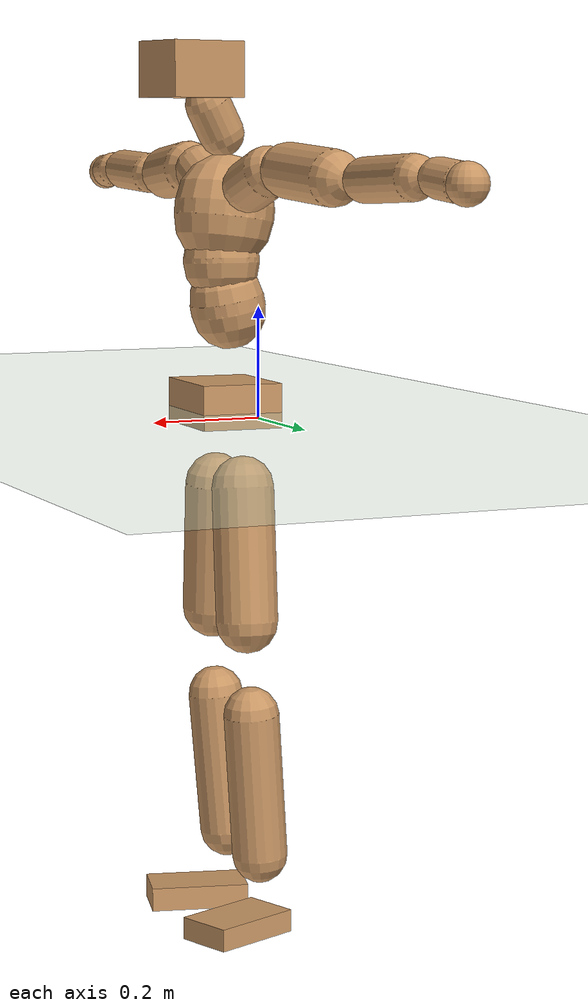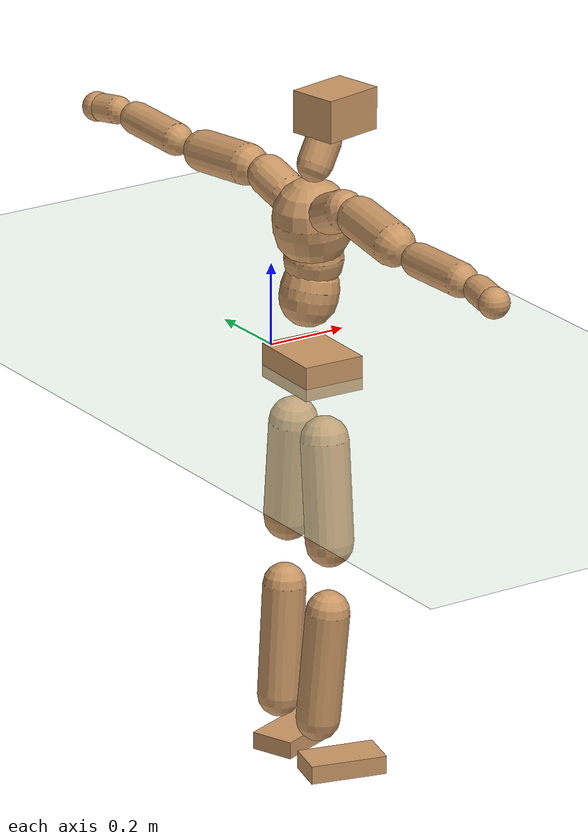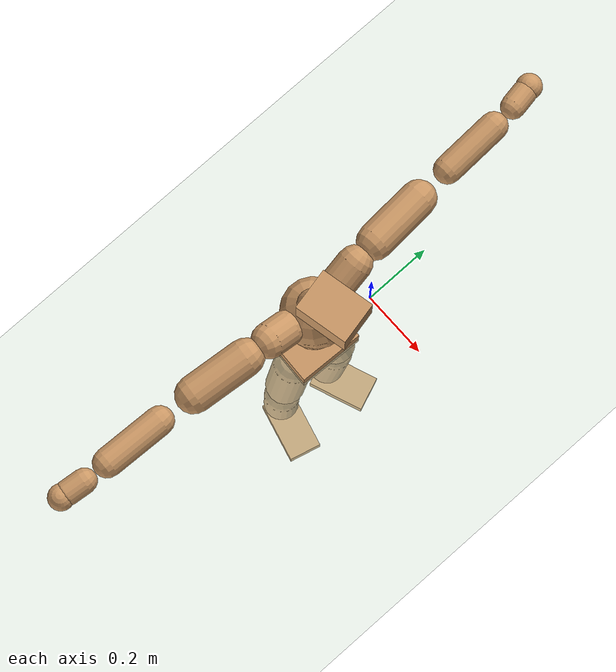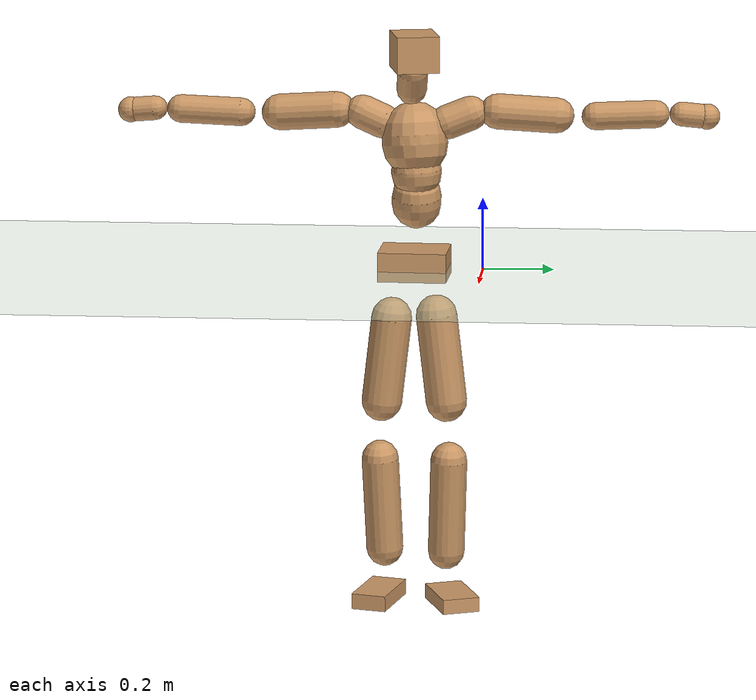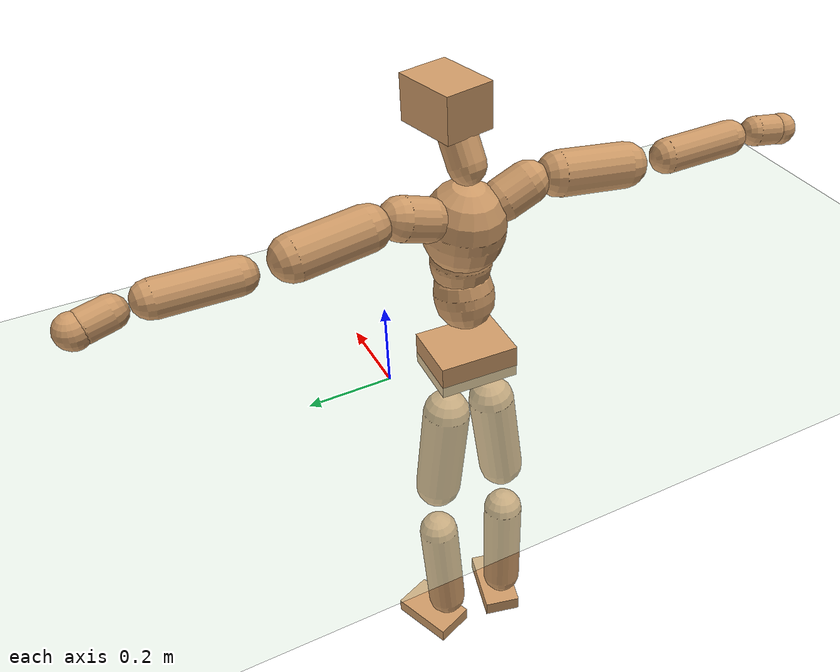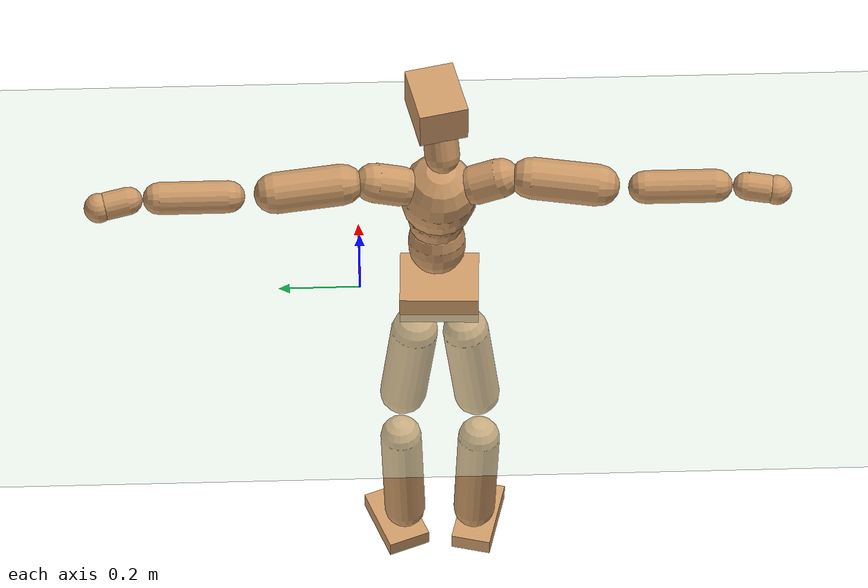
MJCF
<mujoco model="humanoid">
  <compiler coordinate="local" angle="radian"/>
  <default>
    <joint damping="0.0" armature="0.01" stiffness="0.0" limited="true"/>
    <geom conaffinity="1" condim="3" contype="7" margin="0.001" rgba="0.8 0.6 .4 1"/>
  </default>
  <asset>
    <texture type="skybox" builtin="gradient" rgb1=".4 .5 .6" rgb2="0 0 0" width="100" height="100"/>
    <texture builtin="flat" height="1278" mark="cross" markrgb="1 1 1" name="texgeom" random="0.01" rgb1="0.8 0.6 0.4" rgb2="0.8 0.6 0.4" type="cube" width="127"/>
    <texture builtin="checker" height="100" name="texplane" rgb1="0 0 0" rgb2="0.8 0.8 0.8" type="2d" width="100"/>
    <material name="MatPlane" reflectance="0.5" shininess="1" specular="1" texrepeat="60 60" texture="texplane"/>
    <material name="geom" texture="texgeom" texuniform="true"/>
  </asset>
  <worldbody>
    <light cutoff="100" diffuse="1 1 1" dir="-0 0 -1.3" directional="true" exponent="1" pos="0 0 1.3" specular=".1 .1 .1"/>
    <geom conaffinity="1" condim="3" name="floor" pos="0 0 0" rgba="0.8 0.9 0.8 1" size="100 100 .2" type="plane" material="MatPlane"/>
    <body name="Pelvis" pos="-0.0031 -0.1941 0.0185">
      <freejoint name="Pelvis"/>
      <geom type="box" contype="1" conaffinity="1" density="500" pos="-0.0115 0.0004 -0.0085" size="0.076 0.0966 0.0412" quat="0.9998 0.0000 0.0000 -0.0185" name="Pelvis"/>
      <body name="L_Hip" pos="-0.0233 0.0525 -0.0775">
        <joint name="L_Hip_x" type="hinge" pos="0 0 0" axis="1 0 0" stiffness="800" damping="80" armature="0.02" range="-180.0000 180.0000"/>
        <joint name="L_Hip_y" type="hinge" pos="0 0 0" axis="0 1 0" stiffness="800" damping="80" armature="0.02" range="-180.0000 180.0000"/>
        <joint name="L_Hip_z" type="hinge" pos="0 0 0" axis="0 0 1" stiffness="800" damping="80" armature="0.02" range="-180.0000 180.0000"/>
        <geom type="capsule" contype="1" conaffinity="1" density="500" fromto="0.0013 0.0096 -0.0831 0.0052 0.0385 -0.3323" size="0.0581" name="L_Hip"/>
        <body name="L_Knee" pos="0.0065 0.0481 -0.4154">
          <joint name="L_Knee_x" type="hinge" pos="0 0 0" axis="1 0 0" stiffness="800" damping="80" armature="0.02" range="-180.0000 180.0000"/>
          <joint name="L_Knee_y" type="hinge" pos="0 0 0" axis="0 1 0" stiffness="800" damping="80" armature="0.02" range="-180.0000 180.0000"/>
          <joint name="L_Knee_z" type="hinge" pos="0 0 0" axis="0 0 1" stiffness="800" damping="80" armature="0.02" range="-180.0000 180.0000"/>
          <geom type="capsule" contype="1" conaffinity="1" density="500" fromto="-0.0070 -0.0028 -0.0914 -0.0278 -0.0112 -0.3654" size="0.052" name="L_Knee"/>
          <body name="L_Ankle" pos="-0.0348 -0.014 -0.4568">
            <joint name="L_Ankle_x" type="hinge" pos="0 0 0" axis="1 0 0" stiffness="800" damping="80" armature="0.02" range="-180.0000 180.0000"/>
            <joint name="L_Ankle_y" type="hinge" pos="0 0 0" axis="0 1 0" stiffness="800" damping="80" armature="0.02" range="-180.0000 180.0000"/>
            <joint name="L_Ankle_z" type="hinge" pos="0 0 0" axis="0 0 1" stiffness="800" damping="80" armature="0.02" range="-180.0000 180.0000"/>
            <geom type="box" contype="1" conaffinity="1" density="500" pos="0.0611 0.0236 -0.0314" size="0.0877 0.0537 0.021" quat="0.9831 0.0000 0.0000 0.1832" name="L_Ankle"/>
            <body name="L_Toe" pos="0.1221 0.0472 -0.0627">
              <joint name="L_Toe_x" type="hinge" pos="0 0 0" axis="1 0 0" stiffness="500" damping="50" armature="0.02" range="-180.0000 180.0000"/>
              <joint name="L_Toe_y" type="hinge" pos="0 0 0" axis="0 1 0" stiffness="500" damping="50" armature="0.02" range="-180.0000 180.0000"/>
              <joint name="L_Toe_z" type="hinge" pos="0 0 0" axis="0 0 1" stiffness="500" damping="50" armature="0.02" range="-180.0000 180.0000"/>
              <geom type="box" contype="1" conaffinity="1" density="500" pos="0.0000 0.0000 0.0316" size="0.0011 0.0026 0.0011" quat="0.9823 0.0000 0.0000 0.1875" name="L_Toe"/>
            </body>
          </body>
        </body>
      </body>
      <body name="R_Hip" pos="-0.0182 -0.055 -0.0867">
        <joint name="R_Hip_x" type="hinge" pos="0 0 0" axis="1 0 0" stiffness="800" damping="80" armature="0.02" range="-180.0000 180.0000"/>
        <joint name="R_Hip_y" type="hinge" pos="0 0 0" axis="0 1 0" stiffness="800" damping="80" armature="0.02" range="-180.0000 180.0000"/>
        <joint name="R_Hip_z" type="hinge" pos="0 0 0" axis="0 0 1" stiffness="800" damping="80" armature="0.02" range="-180.0000 180.0000"/>
        <geom type="capsule" contype="1" conaffinity="1" density="500" fromto="-0.0017 -0.0096 -0.0817 -0.0069 -0.0384 -0.3266" size="0.0573" name="R_Hip"/>
        <body name="R_Knee" pos="-0.0086 -0.048 -0.4083">
          <joint name="R_Knee_x" type="hinge" pos="0 0 0" axis="1 0 0" stiffness="800" damping="80" armature="0.02" range="-180.0000 180.0000"/>
          <joint name="R_Knee_y" type="hinge" pos="0 0 0" axis="0 1 0" stiffness="800" damping="80" armature="0.02" range="-180.0000 180.0000"/>
          <joint name="R_Knee_z" type="hinge" pos="0 0 0" axis="0 0 1" stiffness="800" damping="80" armature="0.02" range="-180.0000 180.0000"/>
          <geom type="capsule" contype="1" conaffinity="1" density="500" fromto="-0.0065 0.0038 -0.0896 -0.0259 0.0151 -0.3586" size="0.0526" name="R_Knee"/>
          <body name="R_Ankle" pos="-0.0324 0.0189 -0.4482">
            <joint name="R_Ankle_x" type="hinge" pos="0 0 0" axis="1 0 0" stiffness="800" damping="80" armature="0.02" range="-180.0000 180.0000"/>
            <joint name="R_Ankle_y" type="hinge" pos="0 0 0" axis="0 1 0" stiffness="800" damping="80" armature="0.02" range="-180.0000 180.0000"/>
            <joint name="R_Ankle_z" type="hinge" pos="0 0 0" axis="0 0 1" stiffness="800" damping="80" armature="0.02" range="-180.0000 180.0000"/>
            <geom type="box" contype="1" conaffinity="1" density="500" pos="0.0660 -0.0166 -0.0326" size="0.0931 0.05 0.0223" quat="0.9925 0.0000 0.0000 -0.1226" name="R_Ankle"/>
            <body name="R_Toe" pos="0.132 -0.0331 -0.0652">
              <joint name="R_Toe_x" type="hinge" pos="0 0 0" axis="1 0 0" stiffness="500" damping="50" armature="0.02" range="-180.0000 180.0000"/>
              <joint name="R_Toe_y" type="hinge" pos="0 0 0" axis="0 1 0" stiffness="500" damping="50" armature="0.02" range="-180.0000 180.0000"/>
              <joint name="R_Toe_z" type="hinge" pos="0 0 0" axis="0 0 1" stiffness="500" damping="50" armature="0.02" range="-180.0000 180.0000"/>
              <geom type="box" contype="1" conaffinity="1" density="500" pos="0.0000 0.0000 0.0329" size="0.001 0.0025 0.0011" quat="0.9935 0.0000 0.0000 -0.1138" name="R_Toe"/>
            </body>
          </body>
        </body>
      </body>
      <body name="Torso" pos="-0.0277 0.0051 0.1135">
        <joint name="Torso_x" type="hinge" pos="0 0 0" axis="1 0 0" stiffness="1000" damping="100" armature="0.02" range="-180.0000 180.0000"/>
        <joint name="Torso_y" type="hinge" pos="0 0 0" axis="0 1 0" stiffness="1000" damping="100" armature="0.02" range="-180.0000 180.0000"/>
        <joint name="Torso_z" type="hinge" pos="0 0 0" axis="0 0 1" stiffness="1000" damping="100" armature="0.02" range="-180.0000 180.0000"/>
        <geom type="capsule" contype="1" conaffinity="1" density="500" fromto="0.0147 0.0017 0.0706 0.0098 0.0012 0.0471" size="0.0695" name="Torso"/>
        <body name="Spine" pos="0.0246 0.0029 0.1177">
          <joint name="Spine_x" type="hinge" pos="0 0 0" axis="1 0 0" stiffness="1000" damping="100" armature="0.02" range="-180.0000 180.0000"/>
          <joint name="Spine_y" type="hinge" pos="0 0 0" axis="0 1 0" stiffness="1000" damping="100" armature="0.02" range="-180.0000 180.0000"/>
          <joint name="Spine_z" type="hinge" pos="0 0 0" axis="0 0 1" stiffness="1000" damping="100" armature="0.02" range="-180.0000 180.0000"/>
          <geom type="capsule" contype="1" conaffinity="1" density="500" fromto="0.0000 -0.0013 0.0283 0.0000 -0.0009 0.0189" size="0.0705" name="Spine"/>
          <body name="Chest" pos="0.0001 -0.0022 0.0471">
            <joint name="Chest_x" type="hinge" pos="0 0 0" axis="1 0 0" stiffness="1000" damping="100" armature="0.02" range="-180.0000 180.0000"/>
            <joint name="Chest_y" type="hinge" pos="0 0 0" axis="0 1 0" stiffness="1000" damping="100" armature="0.02" range="-180.0000 180.0000"/>
            <joint name="Chest_z" type="hinge" pos="0 0 0" axis="0 0 1" stiffness="1000" damping="100" armature="0.02" range="-180.0000 180.0000"/>
            <geom type="capsule" contype="1" conaffinity="1" density="500" fromto="-0.0101 -0.0047 0.0800 -0.0067 -0.0031 0.0533" size="0.0924" name="Chest"/>
            <body name="Neck" pos="-0.0162 -0.0145 0.1904">
              <joint name="Neck_x" type="hinge" pos="0 0 0" axis="1 0 0" stiffness="500" damping="50" armature="0.02" range="-180.0000 180.0000"/>
              <joint name="Neck_y" type="hinge" pos="0 0 0" axis="0 1 0" stiffness="500" damping="50" armature="0.02" range="-180.0000 180.0000"/>
              <joint name="Neck_z" type="hinge" pos="0 0 0" axis="0 0 1" stiffness="500" damping="50" armature="0.02" range="-180.0000 180.0000"/>
              <geom type="capsule" contype="1" conaffinity="1" density="500" fromto="0.0096 0.0018 0.0176 0.0385 0.0072 0.0705" size="0.0422" name="Neck"/>
              <body name="Head" pos="0.0482 0.009 0.0881">
                <joint name="Head_x" type="hinge" pos="0 0 0" axis="1 0 0" stiffness="500" damping="50" armature="0.02" range="-180.0000 180.0000"/>
                <joint name="Head_y" type="hinge" pos="0 0 0" axis="0 1 0" stiffness="500" damping="50" armature="0.02" range="-180.0000 180.0000"/>
                <joint name="Head_z" type="hinge" pos="0 0 0" axis="0 0 1" stiffness="500" damping="50" armature="0.02" range="-180.0000 180.0000"/>
                <geom type="box" contype="1" conaffinity="1" density="500" pos="0.0251 0.0055 0.0450" size="0.0757 0.059 0.0506" quat="0.9942 0.0000 0.0000 0.1080" name="Head"/>
              </body>
            </body>
            <body name="L_Thorax" pos="-0.0158 0.0629 0.105">
              <joint name="L_Thorax_x" type="hinge" pos="0 0 0" axis="1 0 0" stiffness="500" damping="50" armature="0.02" range="-180.0000 180.0000"/>
              <joint name="L_Thorax_y" type="hinge" pos="0 0 0" axis="0 1 0" stiffness="500" damping="50" armature="0.02" range="-180.0000 180.0000"/>
              <joint name="L_Thorax_z" type="hinge" pos="0 0 0" axis="0 0 1" stiffness="500" damping="50" armature="0.02" range="-180.0000 180.0000"/>
              <geom type="capsule" contype="1" conaffinity="1" density="500" fromto="-0.0028 0.0219 0.0085 -0.0111 0.0878 0.0340" size="0.0482" name="L_Thorax"/>
              <body name="L_Shoulder" pos="-0.0139 0.1097 0.0425">
                <joint name="L_Shoulder_x" type="hinge" pos="0 0 0" axis="1 0 0" stiffness="500" damping="50" armature="0.02" range="-720.0000 720.0000"/>
                <joint name="L_Shoulder_y" type="hinge" pos="0 0 0" axis="0 1 0" stiffness="500" damping="50" armature="0.02" range="-720.0000 720.0000"/>
                <joint name="L_Shoulder_z" type="hinge" pos="0 0 0" axis="0 0 1" stiffness="500" damping="50" armature="0.02" range="-720.0000 720.0000"/>
                <geom type="capsule" contype="1" conaffinity="1" density="500" fromto="-0.0042 0.0542 -0.0039 -0.0169 0.2170 -0.0154" size="0.05" name="L_Shoulder"/>
                <body name="L_Elbow" pos="-0.0211 0.2712 -0.0193">
                  <joint name="L_Elbow_x" type="hinge" pos="0 0 0" axis="1 0 0" stiffness="500" damping="50" armature="0.02" range="-720.0000 720.0000"/>
                  <joint name="L_Elbow_y" type="hinge" pos="0 0 0" axis="0 1 0" stiffness="500" damping="50" armature="0.02" range="-720.0000 720.0000"/>
                  <joint name="L_Elbow_z" type="hinge" pos="0 0 0" axis="0 0 1" stiffness="500" damping="50" armature="0.02" range="-720.0000 720.0000"/>
                  <geom type="capsule" contype="1" conaffinity="1" density="500" fromto="-0.0021 0.0555 0.0022 -0.0083 0.2219 0.0089" size="0.0391" name="L_Elbow"/>
                  <body name="L_Wrist" pos="-0.0104 0.2774 0.0111">
                    <joint name="L_Wrist_x" type="hinge" pos="0 0 0" axis="1 0 0" stiffness="300" damping="30" armature="0.02" range="-180.0000 180.0000"/>
                    <joint name="L_Wrist_y" type="hinge" pos="0 0 0" axis="0 1 0" stiffness="300" damping="30" armature="0.02" range="-180.0000 180.0000"/>
                    <joint name="L_Wrist_z" type="hinge" pos="0 0 0" axis="0 0 1" stiffness="300" damping="30" armature="0.02" range="-180.0000 180.0000"/>
                    <geom type="capsule" contype="1" conaffinity="1" density="500" fromto="-0.0033 0.0177 -0.0021 -0.0132 0.0707 -0.0084" size="0.0339" name="L_Wrist"/>
                    <body name="L_Hand" pos="-0.0166 0.0884 -0.0105">
                      <joint name="L_Hand_x" type="hinge" pos="0 0 0" axis="1 0 0" stiffness="300" damping="30" armature="0.02" range="-180.0000 180.0000"/>
                      <joint name="L_Hand_y" type="hinge" pos="0 0 0" axis="0 1 0" stiffness="300" damping="30" armature="0.02" range="-180.0000 180.0000"/>
                      <joint name="L_Hand_z" type="hinge" pos="0 0 0" axis="0 0 1" stiffness="300" damping="30" armature="0.02" range="-180.0000 180.0000"/>
                      <geom type="sphere" contype="1" conaffinity="1" density="500" size="0.0360" pos="0.0000 0.0000 0.0000" name="L_Hand"/>
                    </body>
                  </body>
                </body>
              </body>
            </body>
            <body name="R_Thorax" pos="-0.0184 -0.072 0.1047">
              <joint name="R_Thorax_x" type="hinge" pos="0 0 0" axis="1 0 0" stiffness="500" damping="50" armature="0.02" range="-180.0000 180.0000"/>
              <joint name="R_Thorax_y" type="hinge" pos="0 0 0" axis="0 1 0" stiffness="500" damping="50" armature="0.02" range="-180.0000 180.0000"/>
              <joint name="R_Thorax_z" type="hinge" pos="0 0 0" axis="0 0 1" stiffness="500" damping="50" armature="0.02" range="-180.0000 180.0000"/>
              <geom type="capsule" contype="1" conaffinity="1" density="500" fromto="-0.0007 -0.0198 0.0088 -0.0028 -0.0790 0.0351" size="0.0484" name="R_Thorax"/>
              <body name="R_Shoulder" pos="-0.0035 -0.0988 0.0439">
                <joint name="R_Shoulder_x" type="hinge" pos="0 0 0" axis="1 0 0" stiffness="500" damping="50" armature="0.02" range="-720.0000 720.0000"/>
                <joint name="R_Shoulder_y" type="hinge" pos="0 0 0" axis="0 1 0" stiffness="500" damping="50" armature="0.02" range="-720.0000 720.0000"/>
                <joint name="R_Shoulder_z" type="hinge" pos="0 0 0" axis="0 0 1" stiffness="500" damping="50" armature="0.02" range="-720.0000 720.0000"/>
                <geom type="capsule" contype="1" conaffinity="1" density="500" fromto="-0.0057 -0.0538 -0.0041 -0.0227 -0.2152 -0.0164" size="0.051" name="R_Shoulder"/>
                <body name="R_Elbow" pos="-0.0284 -0.2689 -0.0205">
                  <joint name="R_Elbow_x" type="hinge" pos="0 0 0" axis="1 0 0" stiffness="500" damping="50" armature="0.02" range="-720.0000 720.0000"/>
                  <joint name="R_Elbow_y" type="hinge" pos="0 0 0" axis="0 1 0" stiffness="500" damping="50" armature="0.02" range="-720.0000 720.0000"/>
                  <joint name="R_Elbow_z" type="hinge" pos="0 0 0" axis="0 0 1" stiffness="500" damping="50" armature="0.02" range="-720.0000 720.0000"/>
                  <geom type="capsule" contype="1" conaffinity="1" density="500" fromto="-0.0017 -0.0566 0.0021 -0.0069 -0.2265 0.0084" size="0.04" name="R_Elbow"/>
                  <body name="R_Wrist" pos="-0.0086 -0.2831 0.0105">
                    <joint name="R_Wrist_x" type="hinge" pos="0 0 0" axis="1 0 0" stiffness="300" damping="30" armature="0.02" range="-180.0000 180.0000"/>
                    <joint name="R_Wrist_y" type="hinge" pos="0 0 0" axis="0 1 0" stiffness="300" damping="30" armature="0.02" range="-180.0000 180.0000"/>
                    <joint name="R_Wrist_z" type="hinge" pos="0 0 0" axis="0 0 1" stiffness="300" damping="30" armature="0.02" range="-180.0000 180.0000"/>
                    <geom type="capsule" contype="1" conaffinity="1" density="500" fromto="-0.0021 -0.0178 -0.0017 -0.0085 -0.0710 -0.0069" size="0.0342" name="R_Wrist"/>
                    <body name="R_Hand" pos="-0.0106 -0.0888 -0.0086">
                      <joint name="R_Hand_x" type="hinge" pos="0 0 0" axis="1 0 0" stiffness="300" damping="30" armature="0.02" range="-180.0000 180.0000"/>
                      <joint name="R_Hand_y" type="hinge" pos="0 0 0" axis="0 1 0" stiffness="300" damping="30" armature="0.02" range="-180.0000 180.0000"/>
                      <joint name="R_Hand_z" type="hinge" pos="0 0 0" axis="0 0 1" stiffness="300" damping="30" armature="0.02" range="-180.0000 180.0000"/>
                      <geom type="sphere" contype="1" conaffinity="1" density="500" size="0.0360" pos="0.0000 0.0000 0.0000" name="R_Hand"/>
                    </body>
                  </body>
                </body>
              </body>
            </body>
          </body>
        </body>
      </body>
    </body>
  </worldbody>
  <actuator>
    <motor name="L_Hip_x" joint="L_Hip_x" gear="500"/>
    <motor name="L_Hip_y" joint="L_Hip_y" gear="500"/>
    <motor name="L_Hip_z" joint="L_Hip_z" gear="500"/>
    <motor name="L_Knee_x" joint="L_Knee_x" gear="500"/>
    <motor name="L_Knee_y" joint="L_Knee_y" gear="500"/>
    <motor name="L_Knee_z" joint="L_Knee_z" gear="500"/>
    <motor name="L_Ankle_x" joint="L_Ankle_x" gear="500"/>
    <motor name="L_Ankle_y" joint="L_Ankle_y" gear="500"/>
    <motor name="L_Ankle_z" joint="L_Ankle_z" gear="500"/>
    <motor name="L_Toe_x" joint="L_Toe_x" gear="500"/>
    <motor name="L_Toe_y" joint="L_Toe_y" gear="500"/>
    <motor name="L_Toe_z" joint="L_Toe_z" gear="500"/>
    <motor name="R_Hip_x" joint="R_Hip_x" gear="500"/>
    <motor name="R_Hip_y" joint="R_Hip_y" gear="500"/>
    <motor name="R_Hip_z" joint="R_Hip_z" gear="500"/>
    <motor name="R_Knee_x" joint="R_Knee_x" gear="500"/>
    <motor name="R_Knee_y" joint="R_Knee_y" gear="500"/>
    <motor name="R_Knee_z" joint="R_Knee_z" gear="500"/>
    <motor name="R_Ankle_x" joint="R_Ankle_x" gear="500"/>
    <motor name="R_Ankle_y" joint="R_Ankle_y" gear="500"/>
    <motor name="R_Ankle_z" joint="R_Ankle_z" gear="500"/>
    <motor name="R_Toe_x" joint="R_Toe_x" gear="500"/>
    <motor name="R_Toe_y" joint="R_Toe_y" gear="500"/>
    <motor name="R_Toe_z" joint="R_Toe_z" gear="500"/>
    <motor name="Torso_x" joint="Torso_x" gear="500"/>
    <motor name="Torso_y" joint="Torso_y" gear="500"/>
    <motor name="Torso_z" joint="Torso_z" gear="500"/>
    <motor name="Spine_x" joint="Spine_x" gear="500"/>
    <motor name="Spine_y" joint="Spine_y" gear="500"/>
    <motor name="Spine_z" joint="Spine_z" gear="500"/>
    <motor name="Chest_x" joint="Chest_x" gear="500"/>
    <motor name="Chest_y" joint="Chest_y" gear="500"/>
    <motor name="Chest_z" joint="Chest_z" gear="500"/>
    <motor name="Neck_x" joint="Neck_x" gear="500"/>
    <motor name="Neck_y" joint="Neck_y" gear="500"/>
    <motor name="Neck_z" joint="Neck_z" gear="500"/>
    <motor name="Head_x" joint="Head_x" gear="500"/>
    <motor name="Head_y" joint="Head_y" gear="500"/>
    <motor name="Head_z" joint="Head_z" gear="500"/>
    <motor name="L_Thorax_x" joint="L_Thorax_x" gear="500"/>
    <motor name="L_Thorax_y" joint="L_Thorax_y" gear="500"/>
    <motor name="L_Thorax_z" joint="L_Thorax_z" gear="500"/>
    <motor name="L_Shoulder_x" joint="L_Shoulder_x" gear="500"/>
    <motor name="L_Shoulder_y" joint="L_Shoulder_y" gear="500"/>
    <motor name="L_Shoulder_z" joint="L_Shoulder_z" gear="500"/>
    <motor name="L_Elbow_x" joint="L_Elbow_x" gear="500"/>
    <motor name="L_Elbow_y" joint="L_Elbow_y" gear="500"/>
    <motor name="L_Elbow_z" joint="L_Elbow_z" gear="500"/>
    <motor name="L_Wrist_x" joint="L_Wrist_x" gear="500"/>
    <motor name="L_Wrist_y" joint="L_Wrist_y" gear="500"/>
    <motor name="L_Wrist_z" joint="L_Wrist_z" gear="500"/>
    <motor name="L_Hand_x" joint="L_Hand_x" gear="500"/>
    <motor name="L_Hand_y" joint="L_Hand_y" gear="500"/>
    <motor name="L_Hand_z" joint="L_Hand_z" gear="500"/>
    <motor name="R_Thorax_x" joint="R_Thorax_x" gear="500"/>
    <motor name="R_Thorax_y" joint="R_Thorax_y" gear="500"/>
    <motor name="R_Thorax_z" joint="R_Thorax_z" gear="500"/>
    <motor name="R_Shoulder_x" joint="R_Shoulder_x" gear="500"/>
    <motor name="R_Shoulder_y" joint="R_Shoulder_y" gear="500"/>
    <motor name="R_Shoulder_z" joint="R_Shoulder_z" gear="500"/>
    <motor name="R_Elbow_x" joint="R_Elbow_x" gear="500"/>
    <motor name="R_Elbow_y" joint="R_Elbow_y" gear="500"/>
    <motor name="R_Elbow_z" joint="R_Elbow_z" gear="500"/>
    <motor name="R_Wrist_x" joint="R_Wrist_x" gear="500"/>
    <motor name="R_Wrist_y" joint="R_Wrist_y" gear="500"/>
    <motor name="R_Wrist_z" joint="R_Wrist_z" gear="500"/>
    <motor name="R_Hand_x" joint="R_Hand_x" gear="500"/>
    <motor name="R_Hand_y" joint="R_Hand_y" gear="500"/>
    <motor name="R_Hand_z" joint="R_Hand_z" gear="500"/>
  </actuator>
  <contact>
    <exclude body1="Torso" body2="Chest"/>
    <exclude body1="Head" body2="Chest"/>
    <exclude body1="R_Knee" body2="R_Toe"/>
    <exclude body1="R_Knee" body2="L_Ankle"/>
    <exclude body1="R_Knee" body2="L_Toe"/>
    <exclude body1="L_Knee" body2="L_Toe"/>
    <exclude body1="L_Knee" body2="R_Ankle"/>
    <exclude body1="L_Knee" body2="R_Toe"/>
    <exclude body1="L_Shoulder" body2="Chest"/>
    <exclude body1="R_Shoulder" body2="Chest"/>
  </contact>
  <sensor/>
  <size njmax="700" nconmax="700"/>
</mujoco>
